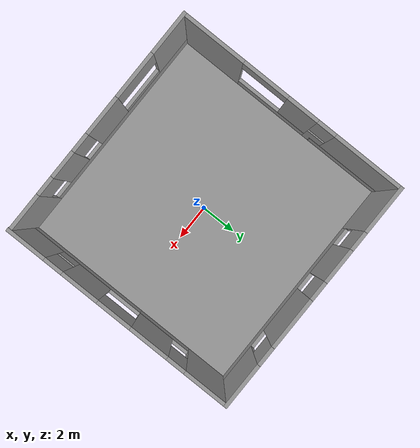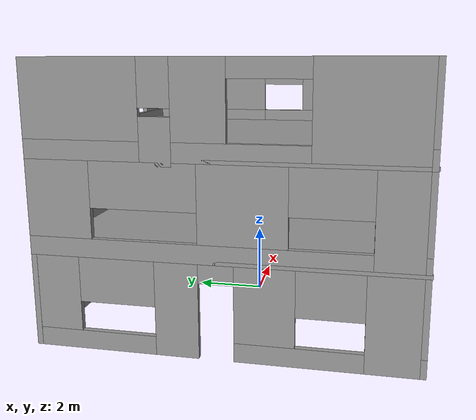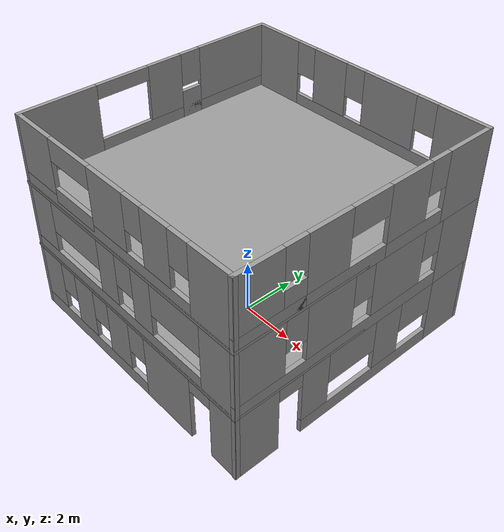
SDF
<?xml version='1.0'?>
<sdf version='1.6'>
  <model name='Tower_3Story'>
    <pose frame=''>0.029276 0.095901 0 0 -0 0</pose>
    <link name='Floor_0'>
      <collision name='Floor_0_Collision'>
        <geometry>
          <box>
            <size>10 10.0231 0.1</size>
          </box>
        </geometry>
        <pose frame=''>0 0 0.05 0 -0 0</pose>
      </collision>
      <visual name='Floor_0_Visual'>
        <pose frame=''>0 0 0.05 0 -0 0</pose>
        <geometry>
          <box>
            <size>10 10.0231 0.1</size>
          </box>
        </geometry>
        <material>
          <script>
            <uri>file://media/materials/scripts/gazebo.material</uri>
            <name>Gazebo/Grey</name>
          </script>
          <ambient>1 1 1 1</ambient>
        </material>
      </visual>
      <pose frame=''>0 0 2.5 0 -0 0</pose>
    </link>
    <link name='Floor_1'>
      <collision name='Floor_1_Collision'>
        <geometry>
          <box>
            <size>10 10.0231 0.1</size>
          </box>
        </geometry>
        <pose frame=''>0 0 0.05 0 -0 0</pose>
      </collision>
      <visual name='Floor_1_Visual'>
        <pose frame=''>0 0 0.05 0 -0 0</pose>
        <geometry>
          <box>
            <size>10 10.0231 0.1</size>
          </box>
        </geometry>
        <material>
          <script>
            <uri>file://media/materials/scripts/gazebo.material</uri>
            <name>Gazebo/Grey</name>
          </script>
          <ambient>1 1 1 1</ambient>
        </material>
      </visual>
      <pose frame=''>0 0 5 0 -0 0</pose>
    </link>
    <link name='Wall_19'>
      <pose frame=''>0 4.93656 0 0 -0 0</pose>
      <visual name='Wall_19_Visual_0'>
        <pose frame=''>-3.35446 0 1.25 0 -0 0</pose>
        <geometry>
          <box>
            <size>3.29207 0.15 2.5</size>
          </box>
        </geometry>
        <material>
          <script>
            <uri>file://media/materials/scripts/gazebo.material</uri>
            <name>Gazebo/Grey</name>
          </script>
          <ambient>1 1 1 1</ambient>
        </material>
      </visual>
      <collision name='Wall_19_Collision_0'>
        <geometry>
          <box>
            <size>3.29207 0.15 2.5</size>
          </box>
        </geometry>
        <pose frame=''>-3.35446 0 1.25 0 -0 0</pose>
      </collision>
      <visual name='Wall_19_Visual_1'>
        <pose frame=''>1.64603 0 0.25 0 -0 0</pose>
        <geometry>
          <box>
            <size>6.70891 0.15 0.5</size>
          </box>
        </geometry>
        <material>
          <script>
            <uri>file://media/materials/scripts/gazebo.material</uri>
            <name>Gazebo/Grey</name>
          </script>
          <ambient>1 1 1 1</ambient>
        </material>
      </visual>
      <collision name='Wall_19_Collision_1'>
        <geometry>
          <box>
            <size>6.70891 0.15 0.5</size>
          </box>
        </geometry>
        <pose frame=''>1.64603 0 0.25 0 -0 0</pose>
      </collision>
      <visual name='Wall_19_Visual_2'>
        <pose frame=''>3.27203 0 1.5 0 -0 0</pose>
        <geometry>
          <box>
            <size>3.45691 0.15 2</size>
          </box>
        </geometry>
        <material>
          <script>
            <uri>file://media/materials/scripts/gazebo.material</uri>
            <name>Gazebo/Grey</name>
          </script>
          <ambient>1 1 1 1</ambient>
        </material>
      </visual>
      <collision name='Wall_19_Collision_2'>
        <geometry>
          <box>
            <size>3.45691 0.15 2</size>
          </box>
        </geometry>
        <pose frame=''>3.27203 0 1.5 0 -0 0</pose>
      </collision>
      <visual name='Wall_19_Visual_3'>
        <pose frame=''>-0.082422 0 1.9 0 -0 0</pose>
        <geometry>
          <box>
            <size>3.252 0.15 1.2</size>
          </box>
        </geometry>
        <material>
          <script>
            <uri>file://media/materials/scripts/gazebo.material</uri>
            <name>Gazebo/Grey</name>
          </script>
          <ambient>1 1 1 1</ambient>
        </material>
      </visual>
      <collision name='Wall_19_Collision_3'>
        <geometry>
          <box>
            <size>3.252 0.15 1.2</size>
          </box>
        </geometry>
        <pose frame=''>-0.082422 0 1.9 0 -0 0</pose>
      </collision>
    </link>
    <link name='Wall_21'>
      <pose frame=''>4.925 -0.011565 0 0 0 -1.5708</pose>
      <visual name='Wall_21_Visual_0'>
        <pose frame=''>-4.12853 0 1.25 0 -0 0</pose>
        <geometry>
          <box>
            <size>1.74294 0.15 2.5</size>
          </box>
        </geometry>
        <material>
          <script>
            <uri>file://media/materials/scripts/gazebo.material</uri>
            <name>Gazebo/Grey</name>
          </script>
          <ambient>1 1 1 1</ambient>
        </material>
      </visual>
      <collision name='Wall_21_Collision_0'>
        <geometry>
          <box>
            <size>1.74294 0.15 2.5</size>
          </box>
        </geometry>
        <pose frame=''>-4.12853 0 1.25 0 -0 0</pose>
      </collision>
      <visual name='Wall_21_Visual_1'>
        <pose frame=''>4.1878 0 1.25 0 -0 0</pose>
        <geometry>
          <box>
            <size>1.62441 0.15 2.5</size>
          </box>
        </geometry>
        <material>
          <script>
            <uri>file://media/materials/scripts/gazebo.material</uri>
            <name>Gazebo/Grey</name>
          </script>
          <ambient>1 1 1 1</ambient>
        </material>
      </visual>
      <collision name='Wall_21_Collision_1'>
        <geometry>
          <box>
            <size>1.62441 0.15 2.5</size>
          </box>
        </geometry>
        <pose frame=''>4.1878 0 1.25 0 -0 0</pose>
      </collision>
      <visual name='Wall_21_Visual_2'>
        <pose frame=''>-0.390731 0 0.25 0 -0 0</pose>
        <geometry>
          <box>
            <size>5.73265 0.15 0.5</size>
          </box>
        </geometry>
        <material>
          <script>
            <uri>file://media/materials/scripts/gazebo.material</uri>
            <name>Gazebo/Grey</name>
          </script>
          <ambient>1 1 1 1</ambient>
        </material>
      </visual>
      <collision name='Wall_21_Collision_2'>
        <geometry>
          <box>
            <size>5.73265 0.15 0.5</size>
          </box>
        </geometry>
        <pose frame=''>-0.390731 0 0.25 0 -0 0</pose>
      </collision>
      <visual name='Wall_21_Visual_3'>
        <pose frame=''>-1.20252 0 1.5 0 -0 0</pose>
        <geometry>
          <box>
            <size>1.1675 0.15 2</size>
          </box>
        </geometry>
        <material>
          <script>
            <uri>file://media/materials/scripts/gazebo.material</uri>
            <name>Gazebo/Grey</name>
          </script>
          <ambient>1 1 1 1</ambient>
        </material>
      </visual>
      <collision name='Wall_21_Collision_3'>
        <geometry>
          <box>
            <size>1.1675 0.15 2</size>
          </box>
        </geometry>
        <pose frame=''>-1.20252 0 1.5 0 -0 0</pose>
      </collision>
      <visual name='Wall_21_Visual_4'>
        <pose frame=''>1.92841 0 1.5 0 -0 0</pose>
        <geometry>
          <box>
            <size>1.09437 0.15 2</size>
          </box>
        </geometry>
        <material>
          <script>
            <uri>file://media/materials/scripts/gazebo.material</uri>
            <name>Gazebo/Grey</name>
          </script>
          <ambient>1 1 1 1</ambient>
        </material>
      </visual>
      <collision name='Wall_21_Collision_4'>
        <geometry>
          <box>
            <size>1.09437 0.15 2</size>
          </box>
        </geometry>
        <pose frame=''>1.92841 0 1.5 0 -0 0</pose>
      </collision>
      <visual name='Wall_21_Visual_5'>
        <pose frame=''>-2.52166 0 1.9 0 -0 0</pose>
        <geometry>
          <box>
            <size>1.47079 0.15 1.2</size>
          </box>
        </geometry>
        <material>
          <script>
            <uri>file://media/materials/scripts/gazebo.material</uri>
            <name>Gazebo/Grey</name>
          </script>
          <ambient>1 1 1 1</ambient>
        </material>
      </visual>
      <collision name='Wall_21_Collision_5'>
        <geometry>
          <box>
            <size>1.47079 0.15 1.2</size>
          </box>
        </geometry>
        <pose frame=''>-2.52166 0 1.9 0 -0 0</pose>
      </collision>
      <visual name='Wall_21_Visual_6'>
        <pose frame=''>0.381228 0 1.9 0 -0 0</pose>
        <geometry>
          <box>
            <size>2 0.15 1.2</size>
          </box>
        </geometry>
        <material>
          <script>
            <uri>file://media/materials/scripts/gazebo.material</uri>
            <name>Gazebo/Grey</name>
          </script>
          <ambient>1 1 1 1</ambient>
        </material>
      </visual>
      <collision name='Wall_21_Collision_6'>
        <geometry>
          <box>
            <size>2 0.15 1.2</size>
          </box>
        </geometry>
        <pose frame=''>0.381228 0 1.9 0 -0 0</pose>
      </collision>
      <visual name='Wall_21_Visual_7'>
        <pose frame=''>2.92559 0 2.25 0 -0 0</pose>
        <geometry>
          <box>
            <size>0.9 0.15 0.5</size>
          </box>
        </geometry>
        <material>
          <script>
            <uri>file://media/materials/scripts/gazebo.material</uri>
            <name>Gazebo/Grey</name>
          </script>
          <ambient>1 1 1 1</ambient>
        </material>
      </visual>
      <collision name='Wall_21_Collision_7'>
        <geometry>
          <box>
            <size>0.9 0.15 0.5</size>
          </box>
        </geometry>
        <pose frame=''>2.92559 0 2.25 0 -0 0</pose>
      </collision>
    </link>
    <link name='Wall_22'>
      <pose frame=''>0 -4.91343 0 0 -0 3.14159</pose>
      <visual name='Wall_22_Visual_0'>
        <pose frame=''>-4.45121 0 1.25 0 -0 0</pose>
        <geometry>
          <box>
            <size>1.09857 0.15 2.5</size>
          </box>
        </geometry>
        <material>
          <script>
            <uri>file://media/materials/scripts/gazebo.material</uri>
            <name>Gazebo/Grey</name>
          </script>
          <ambient>1 1 1 1</ambient>
        </material>
      </visual>
      <collision name='Wall_22_Collision_0'>
        <geometry>
          <box>
            <size>1.09857 0.15 2.5</size>
          </box>
        </geometry>
        <pose frame=''>-4.45121 0 1.25 0 -0 0</pose>
      </collision>
      <visual name='Wall_22_Visual_1'>
        <pose frame=''>-1.92097 0 1.25 0 -0 0</pose>
        <geometry>
          <box>
            <size>2.16191 0.15 2.5</size>
          </box>
        </geometry>
        <material>
          <script>
            <uri>file://media/materials/scripts/gazebo.material</uri>
            <name>Gazebo/Grey</name>
          </script>
          <ambient>1 1 1 1</ambient>
        </material>
      </visual>
      <collision name='Wall_22_Collision_1'>
        <geometry>
          <box>
            <size>2.16191 0.15 2.5</size>
          </box>
        </geometry>
        <pose frame=''>-1.92097 0 1.25 0 -0 0</pose>
      </collision>
      <visual name='Wall_22_Visual_2'>
        <pose frame=''>2.08024 0 0.25 0 -0 0</pose>
        <geometry>
          <box>
            <size>5.84051 0.15 0.5</size>
          </box>
        </geometry>
        <material>
          <script>
            <uri>file://media/materials/scripts/gazebo.material</uri>
            <name>Gazebo/Grey</name>
          </script>
          <ambient>1 1 1 1</ambient>
        </material>
      </visual>
      <collision name='Wall_22_Collision_2'>
        <geometry>
          <box>
            <size>5.84051 0.15 0.5</size>
          </box>
        </geometry>
        <pose frame=''>2.08024 0 0.25 0 -0 0</pose>
      </collision>
      <visual name='Wall_22_Visual_3'>
        <pose frame=''>0.519904 0 1.5 0 -0 0</pose>
        <geometry>
          <box>
            <size>1.11984 0.15 2</size>
          </box>
        </geometry>
        <material>
          <script>
            <uri>file://media/materials/scripts/gazebo.material</uri>
            <name>Gazebo/Grey</name>
          </script>
          <ambient>1 1 1 1</ambient>
        </material>
      </visual>
      <collision name='Wall_22_Collision_3'>
        <geometry>
          <box>
            <size>1.11984 0.15 2</size>
          </box>
        </geometry>
        <pose frame=''>0.519904 0 1.5 0 -0 0</pose>
      </collision>
      <visual name='Wall_22_Visual_4'>
        <pose frame=''>2.40505 0 1.5 0 -0 0</pose>
        <geometry>
          <box>
            <size>1.05045 0.15 2</size>
          </box>
        </geometry>
        <material>
          <script>
            <uri>file://media/materials/scripts/gazebo.material</uri>
            <name>Gazebo/Grey</name>
          </script>
          <ambient>1 1 1 1</ambient>
        </material>
      </visual>
      <collision name='Wall_22_Collision_4'>
        <geometry>
          <box>
            <size>1.05045 0.15 2</size>
          </box>
        </geometry>
        <pose frame=''>2.40505 0 1.5 0 -0 0</pose>
      </collision>
      <visual name='Wall_22_Visual_5'>
        <pose frame=''>4.36538 0 1.5 0 -0 0</pose>
        <geometry>
          <box>
            <size>1.27022 0.15 2</size>
          </box>
        </geometry>
        <material>
          <script>
            <uri>file://media/materials/scripts/gazebo.material</uri>
            <name>Gazebo/Grey</name>
          </script>
          <ambient>1 1 1 1</ambient>
        </material>
      </visual>
      <collision name='Wall_22_Collision_5'>
        <geometry>
          <box>
            <size>1.27022 0.15 2</size>
          </box>
        </geometry>
        <pose frame=''>4.36538 0 1.5 0 -0 0</pose>
      </collision>
      <visual name='Wall_22_Visual_6'>
        <pose frame=''>-0.440016 0 1.9 0 -0 0</pose>
        <geometry>
          <box>
            <size>0.8 0.15 1.2</size>
          </box>
        </geometry>
        <material>
          <script>
            <uri>file://media/materials/scripts/gazebo.material</uri>
            <name>Gazebo/Grey</name>
          </script>
          <ambient>1 1 1 1</ambient>
        </material>
      </visual>
      <collision name='Wall_22_Collision_6'>
        <geometry>
          <box>
            <size>0.8 0.15 1.2</size>
          </box>
        </geometry>
        <pose frame=''>-0.440016 0 1.9 0 -0 0</pose>
      </collision>
      <visual name='Wall_22_Visual_7'>
        <pose frame=''>1.47982 0 1.9 0 -0 0</pose>
        <geometry>
          <box>
            <size>0.8 0.15 1.2</size>
          </box>
        </geometry>
        <material>
          <script>
            <uri>file://media/materials/scripts/gazebo.material</uri>
            <name>Gazebo/Grey</name>
          </script>
          <ambient>1 1 1 1</ambient>
        </material>
      </visual>
      <collision name='Wall_22_Collision_7'>
        <geometry>
          <box>
            <size>0.8 0.15 1.2</size>
          </box>
        </geometry>
        <pose frame=''>1.47982 0 1.9 0 -0 0</pose>
      </collision>
      <visual name='Wall_22_Visual_8'>
        <pose frame=''>3.33027 0 1.9 0 -0 0</pose>
        <geometry>
          <box>
            <size>0.8 0.15 1.2</size>
          </box>
        </geometry>
        <material>
          <script>
            <uri>file://media/materials/scripts/gazebo.material</uri>
            <name>Gazebo/Grey</name>
          </script>
          <ambient>1 1 1 1</ambient>
        </material>
      </visual>
      <collision name='Wall_22_Collision_8'>
        <geometry>
          <box>
            <size>0.8 0.15 1.2</size>
          </box>
        </geometry>
        <pose frame=''>3.33027 0 1.9 0 -0 0</pose>
      </collision>
      <visual name='Wall_22_Visual_9'>
        <pose frame=''>-3.45192 0 2.25 0 -0 0</pose>
        <geometry>
          <box>
            <size>0.9 0.15 0.5</size>
          </box>
        </geometry>
        <material>
          <script>
            <uri>file://media/materials/scripts/gazebo.material</uri>
            <name>Gazebo/Grey</name>
          </script>
          <ambient>1 1 1 1</ambient>
        </material>
      </visual>
      <collision name='Wall_22_Collision_9'>
        <geometry>
          <box>
            <size>0.9 0.15 0.5</size>
          </box>
        </geometry>
        <pose frame=''>-3.45192 0 2.25 0 -0 0</pose>
      </collision>
    </link>
    <link name='Wall_23'>
      <pose frame=''>-4.925 0.011565 0 0 -0 1.5708</pose>
      <visual name='Wall_23_Visual_0'>
        <pose frame=''>-4.27105 0 1.25 0 -0 0</pose>
        <geometry>
          <box>
            <size>1.4579 0.15 2.5</size>
          </box>
        </geometry>
        <material>
          <script>
            <uri>file://media/materials/scripts/gazebo.material</uri>
            <name>Gazebo/Grey</name>
          </script>
          <ambient>1 1 1 1</ambient>
        </material>
      </visual>
      <collision name='Wall_23_Collision_0'>
        <geometry>
          <box>
            <size>1.4579 0.15 2.5</size>
          </box>
        </geometry>
        <pose frame=''>-4.27105 0 1.25 0 -0 0</pose>
      </collision>
      <visual name='Wall_23_Visual_1'>
        <pose frame=''>1.11996 0 1.25 0 -0 0</pose>
        <geometry>
          <box>
            <size>1.1309 0.15 2.5</size>
          </box>
        </geometry>
        <material>
          <script>
            <uri>file://media/materials/scripts/gazebo.material</uri>
            <name>Gazebo/Grey</name>
          </script>
          <ambient>1 1 1 1</ambient>
        </material>
      </visual>
      <collision name='Wall_23_Collision_1'>
        <geometry>
          <box>
            <size>1.1309 0.15 2.5</size>
          </box>
        </geometry>
        <pose frame=''>1.11996 0 1.25 0 -0 0</pose>
      </collision>
      <visual name='Wall_23_Visual_2'>
        <pose frame=''>-1.94379 0 0.25 0 -0 0</pose>
        <geometry>
          <box>
            <size>3.19662 0.15 0.5</size>
          </box>
        </geometry>
        <material>
          <script>
            <uri>file://media/materials/scripts/gazebo.material</uri>
            <name>Gazebo/Grey</name>
          </script>
          <ambient>1 1 1 1</ambient>
        </material>
      </visual>
      <collision name='Wall_23_Collision_2'>
        <geometry>
          <box>
            <size>3.19662 0.15 0.5</size>
          </box>
        </geometry>
        <pose frame=''>-1.94379 0 0.25 0 -0 0</pose>
      </collision>
      <visual name='Wall_23_Visual_3'>
        <pose frame=''>3.34271 0 0.25 0 -0 0</pose>
        <geometry>
          <box>
            <size>3.31459 0.15 0.5</size>
          </box>
        </geometry>
        <material>
          <script>
            <uri>file://media/materials/scripts/gazebo.material</uri>
            <name>Gazebo/Grey</name>
          </script>
          <ambient>1 1 1 1</ambient>
        </material>
      </visual>
      <collision name='Wall_23_Collision_3'>
        <geometry>
          <box>
            <size>3.31459 0.15 0.5</size>
          </box>
        </geometry>
        <pose frame=''>3.34271 0 0.25 0 -0 0</pose>
      </collision>
      <visual name='Wall_23_Visual_4'>
        <pose frame=''>-1.10431 0 1.5 0 -0 0</pose>
        <geometry>
          <box>
            <size>1.51766 0.15 2</size>
          </box>
        </geometry>
        <material>
          <script>
            <uri>file://media/materials/scripts/gazebo.material</uri>
            <name>Gazebo/Grey</name>
          </script>
          <ambient>1 1 1 1</ambient>
        </material>
      </visual>
      <collision name='Wall_23_Collision_4'>
        <geometry>
          <box>
            <size>1.51766 0.15 2</size>
          </box>
        </geometry>
        <pose frame=''>-1.10431 0 1.5 0 -0 0</pose>
      </collision>
      <visual name='Wall_23_Visual_5'>
        <pose frame=''>-1.10431 0 1.5 0 -0 0</pose>
        <geometry>
          <box>
            <size>1.51766 0.15 2</size>
          </box>
        </geometry>
        <material>
          <script>
            <uri>file://media/materials/scripts/gazebo.material</uri>
            <name>Gazebo/Grey</name>
          </script>
          <ambient>1 1 1 1</ambient>
        </material>
      </visual>
      <collision name='Wall_23_Collision_5'>
        <geometry>
          <box>
            <size>1.51766 0.15 2</size>
          </box>
        </geometry>
        <pose frame=''>-1.10431 0 1.5 0 -0 0</pose>
      </collision>
      <visual name='Wall_23_Visual_6'>
        <pose frame=''>4.3441 0 1.5 0 -0 0</pose>
        <geometry>
          <box>
            <size>1.3118 0.15 2</size>
          </box>
        </geometry>
        <material>
          <script>
            <uri>file://media/materials/scripts/gazebo.material</uri>
            <name>Gazebo/Grey</name>
          </script>
          <ambient>1 1 1 1</ambient>
        </material>
      </visual>
      <collision name='Wall_23_Collision_6'>
        <geometry>
          <box>
            <size>1.3118 0.15 2</size>
          </box>
        </geometry>
        <pose frame=''>4.3441 0 1.5 0 -0 0</pose>
      </collision>
      <visual name='Wall_23_Visual_7'>
        <pose frame=''>-2.70262 0 1.9 0 -0 0</pose>
        <geometry>
          <box>
            <size>1.67896 0.15 1.2</size>
          </box>
        </geometry>
        <material>
          <script>
            <uri>file://media/materials/scripts/gazebo.material</uri>
            <name>Gazebo/Grey</name>
          </script>
          <ambient>1 1 1 1</ambient>
        </material>
      </visual>
      <collision name='Wall_23_Collision_7'>
        <geometry>
          <box>
            <size>1.67896 0.15 1.2</size>
          </box>
        </geometry>
        <pose frame=''>-2.70262 0 1.9 0 -0 0</pose>
      </collision>
      <visual name='Wall_23_Visual_8'>
        <pose frame=''>2.68681 0 1.9 0 -0 0</pose>
        <geometry>
          <box>
            <size>2.00279 0.15 1.2</size>
          </box>
        </geometry>
        <material>
          <script>
            <uri>file://media/materials/scripts/gazebo.material</uri>
            <name>Gazebo/Grey</name>
          </script>
          <ambient>1 1 1 1</ambient>
        </material>
      </visual>
      <collision name='Wall_23_Collision_8'>
        <geometry>
          <box>
            <size>2.00279 0.15 1.2</size>
          </box>
        </geometry>
        <pose frame=''>2.68681 0 1.9 0 -0 0</pose>
      </collision>
      <visual name='Wall_23_Visual_9'>
        <pose frame=''>0.104515 0 2.25 0 -0 0</pose>
        <geometry>
          <box>
            <size>0.9 0.15 0.5</size>
          </box>
        </geometry>
        <material>
          <script>
            <uri>file://media/materials/scripts/gazebo.material</uri>
            <name>Gazebo/Grey</name>
          </script>
          <ambient>1 1 1 1</ambient>
        </material>
      </visual>
      <collision name='Wall_23_Collision_9'>
        <geometry>
          <box>
            <size>0.9 0.15 0.5</size>
          </box>
        </geometry>
        <pose frame=''>0.104515 0 2.25 0 -0 0</pose>
      </collision>
      <visual name='Wall_23_Visual_10'>
        <pose frame=''>0.104515 0 2.25 0 -0 0</pose>
        <geometry>
          <box>
            <size>0.9 0.15 0.5</size>
          </box>
        </geometry>
        <material>
          <script>
            <uri>file://media/materials/scripts/gazebo.material</uri>
            <name>Gazebo/Grey</name>
          </script>
          <ambient>1 1 1 1</ambient>
        </material>
      </visual>
      <collision name='Wall_23_Collision_10'>
        <geometry>
          <box>
            <size>0.9 0.15 0.5</size>
          </box>
        </geometry>
        <pose frame=''>0.104515 0 2.25 0 -0 0</pose>
      </collision>
    </link>
    <link name='Wall_25'>
      <pose frame=''>0 4.93656 2.5 0 -0 0</pose>
      <visual name='Wall_25_Visual_0'>
        <pose frame=''>-3.45824 0 1.25 0 -0 0</pose>
        <geometry>
          <box>
            <size>3.08351 0.15 2.5</size>
          </box>
        </geometry>
        <material>
          <script>
            <uri>file://media/materials/scripts/gazebo.material</uri>
            <name>Gazebo/Grey</name>
          </script>
          <ambient>1 1 1 1</ambient>
        </material>
      </visual>
      <collision name='Wall_25_Collision_0'>
        <geometry>
          <box>
            <size>3.08351 0.15 2.5</size>
          </box>
        </geometry>
        <pose frame=''>-3.45824 0 1.25 0 -0 0</pose>
      </collision>
      <visual name='Wall_25_Visual_1'>
        <pose frame=''>1.54176 0 0.25 0 -0 0</pose>
        <geometry>
          <box>
            <size>6.91648 0.15 0.5</size>
          </box>
        </geometry>
        <material>
          <script>
            <uri>file://media/materials/scripts/gazebo.material</uri>
            <name>Gazebo/Grey</name>
          </script>
          <ambient>1 1 1 1</ambient>
        </material>
      </visual>
      <collision name='Wall_25_Collision_1'>
        <geometry>
          <box>
            <size>6.91648 0.15 0.5</size>
          </box>
        </geometry>
        <pose frame=''>1.54176 0 0.25 0 -0 0</pose>
      </collision>
      <visual name='Wall_25_Visual_2'>
        <pose frame=''>3.63026 0 1.5 0 -0 0</pose>
        <geometry>
          <box>
            <size>2.73949 0.15 2</size>
          </box>
        </geometry>
        <material>
          <script>
            <uri>file://media/materials/scripts/gazebo.material</uri>
            <name>Gazebo/Grey</name>
          </script>
          <ambient>1 1 1 1</ambient>
        </material>
      </visual>
      <collision name='Wall_25_Collision_2'>
        <geometry>
          <box>
            <size>2.73949 0.15 2</size>
          </box>
        </geometry>
        <pose frame=''>3.63026 0 1.5 0 -0 0</pose>
      </collision>
      <visual name='Wall_25_Visual_3'>
        <pose frame=''>0.172015 0 2.25 0 -0 0</pose>
        <geometry>
          <box>
            <size>4.177 0.15 0.5</size>
          </box>
        </geometry>
        <material>
          <script>
            <uri>file://media/materials/scripts/gazebo.material</uri>
            <name>Gazebo/Grey</name>
          </script>
          <ambient>1 1 1 1</ambient>
        </material>
      </visual>
      <collision name='Wall_25_Collision_3'>
        <geometry>
          <box>
            <size>4.177 0.15 0.5</size>
          </box>
        </geometry>
        <pose frame=''>0.172015 0 2.25 0 -0 0</pose>
      </collision>
    </link>
    <link name='Wall_26'>
      <pose frame=''>4.925 -0.011565 2.5 0 0 -1.5708</pose>
      <visual name='Wall_26_Visual_0'>
        <pose frame=''>-4.12436 0 1.25 0 -0 0</pose>
        <geometry>
          <box>
            <size>1.75128 0.15 2.5</size>
          </box>
        </geometry>
        <material>
          <script>
            <uri>file://media/materials/scripts/gazebo.material</uri>
            <name>Gazebo/Grey</name>
          </script>
          <ambient>1 1 1 1</ambient>
        </material>
      </visual>
      <collision name='Wall_26_Collision_0'>
        <geometry>
          <box>
            <size>1.75128 0.15 2.5</size>
          </box>
        </geometry>
        <pose frame=''>-4.12436 0 1.25 0 -0 0</pose>
      </collision>
      <visual name='Wall_26_Visual_1'>
        <pose frame=''>0.875638 0 0.25 0 -0 0</pose>
        <geometry>
          <box>
            <size>8.24872 0.15 0.5</size>
          </box>
        </geometry>
        <material>
          <script>
            <uri>file://media/materials/scripts/gazebo.material</uri>
            <name>Gazebo/Grey</name>
          </script>
          <ambient>1 1 1 1</ambient>
        </material>
      </visual>
      <collision name='Wall_26_Collision_1'>
        <geometry>
          <box>
            <size>8.24872 0.15 0.5</size>
          </box>
        </geometry>
        <pose frame=''>0.875638 0 0.25 0 -0 0</pose>
      </collision>
      <visual name='Wall_26_Visual_2'>
        <pose frame=''>-1.34523 0 1.5 0 -0 0</pose>
        <geometry>
          <box>
            <size>2.20698 0.15 2</size>
          </box>
        </geometry>
        <material>
          <script>
            <uri>file://media/materials/scripts/gazebo.material</uri>
            <name>Gazebo/Grey</name>
          </script>
          <ambient>1 1 1 1</ambient>
        </material>
      </visual>
      <collision name='Wall_26_Collision_2'>
        <geometry>
          <box>
            <size>2.20698 0.15 2</size>
          </box>
        </geometry>
        <pose frame=''>-1.34523 0 1.5 0 -0 0</pose>
      </collision>
      <visual name='Wall_26_Visual_3'>
        <pose frame=''>1.4767 0 1.5 0 -0 0</pose>
        <geometry>
          <box>
            <size>1.83689 0.15 2</size>
          </box>
        </geometry>
        <material>
          <script>
            <uri>file://media/materials/scripts/gazebo.material</uri>
            <name>Gazebo/Grey</name>
          </script>
          <ambient>1 1 1 1</ambient>
        </material>
      </visual>
      <collision name='Wall_26_Collision_3'>
        <geometry>
          <box>
            <size>1.83689 0.15 2</size>
          </box>
        </geometry>
        <pose frame=''>1.4767 0 1.5 0 -0 0</pose>
      </collision>
      <visual name='Wall_26_Visual_4'>
        <pose frame=''>4.09757 0 1.5 0 -0 0</pose>
        <geometry>
          <box>
            <size>1.80486 0.15 2</size>
          </box>
        </geometry>
        <material>
          <script>
            <uri>file://media/materials/scripts/gazebo.material</uri>
            <name>Gazebo/Grey</name>
          </script>
          <ambient>1 1 1 1</ambient>
        </material>
      </visual>
      <collision name='Wall_26_Collision_4'>
        <geometry>
          <box>
            <size>1.80486 0.15 2</size>
          </box>
        </geometry>
        <pose frame=''>4.09757 0 1.5 0 -0 0</pose>
      </collision>
      <visual name='Wall_26_Visual_5'>
        <pose frame=''>-2.84872 0 1.9 0 -0 0</pose>
        <geometry>
          <box>
            <size>0.8 0.15 1.2</size>
          </box>
        </geometry>
        <material>
          <script>
            <uri>file://media/materials/scripts/gazebo.material</uri>
            <name>Gazebo/Grey</name>
          </script>
          <ambient>1 1 1 1</ambient>
        </material>
      </visual>
      <collision name='Wall_26_Collision_5'>
        <geometry>
          <box>
            <size>0.8 0.15 1.2</size>
          </box>
        </geometry>
        <pose frame=''>-2.84872 0 1.9 0 -0 0</pose>
      </collision>
      <visual name='Wall_26_Visual_6'>
        <pose frame=''>0.158256 0 1.9 0 -0 0</pose>
        <geometry>
          <box>
            <size>0.8 0.15 1.2</size>
          </box>
        </geometry>
        <material>
          <script>
            <uri>file://media/materials/scripts/gazebo.material</uri>
            <name>Gazebo/Grey</name>
          </script>
          <ambient>1 1 1 1</ambient>
        </material>
      </visual>
      <collision name='Wall_26_Collision_6'>
        <geometry>
          <box>
            <size>0.8 0.15 1.2</size>
          </box>
        </geometry>
        <pose frame=''>0.158256 0 1.9 0 -0 0</pose>
      </collision>
      <visual name='Wall_26_Visual_7'>
        <pose frame=''>2.79515 0 1.9 0 -0 0</pose>
        <geometry>
          <box>
            <size>0.8 0.15 1.2</size>
          </box>
        </geometry>
        <material>
          <script>
            <uri>file://media/materials/scripts/gazebo.material</uri>
            <name>Gazebo/Grey</name>
          </script>
          <ambient>1 1 1 1</ambient>
        </material>
      </visual>
      <collision name='Wall_26_Collision_7'>
        <geometry>
          <box>
            <size>0.8 0.15 1.2</size>
          </box>
        </geometry>
        <pose frame=''>2.79515 0 1.9 0 -0 0</pose>
      </collision>
    </link>
    <link name='Wall_27'>
      <pose frame=''>0 -4.91343 2.5 0 -0 3.14159</pose>
      <visual name='Wall_27_Visual_0'>
        <pose frame=''>-4.2895 0 1.25 0 -0 0</pose>
        <geometry>
          <box>
            <size>1.42101 0.15 2.5</size>
          </box>
        </geometry>
        <material>
          <script>
            <uri>file://media/materials/scripts/gazebo.material</uri>
            <name>Gazebo/Grey</name>
          </script>
          <ambient>1 1 1 1</ambient>
        </material>
      </visual>
      <collision name='Wall_27_Collision_0'>
        <geometry>
          <box>
            <size>1.42101 0.15 2.5</size>
          </box>
        </geometry>
        <pose frame=''>-4.2895 0 1.25 0 -0 0</pose>
      </collision>
      <visual name='Wall_27_Visual_1'>
        <pose frame=''>0.710503 0 0.25 0 -0 0</pose>
        <geometry>
          <box>
            <size>8.57899 0.15 0.5</size>
          </box>
        </geometry>
        <material>
          <script>
            <uri>file://media/materials/scripts/gazebo.material</uri>
            <name>Gazebo/Grey</name>
          </script>
          <ambient>1 1 1 1</ambient>
        </material>
      </visual>
      <collision name='Wall_27_Collision_1'>
        <geometry>
          <box>
            <size>8.57899 0.15 0.5</size>
          </box>
        </geometry>
        <pose frame=''>0.710503 0 0.25 0 -0 0</pose>
      </collision>
      <visual name='Wall_27_Visual_2'>
        <pose frame=''>-0.993152 0 1.5 0 -0 0</pose>
        <geometry>
          <box>
            <size>0.888534 0.15 2</size>
          </box>
        </geometry>
        <material>
          <script>
            <uri>file://media/materials/scripts/gazebo.material</uri>
            <name>Gazebo/Grey</name>
          </script>
          <ambient>1 1 1 1</ambient>
        </material>
      </visual>
      <collision name='Wall_27_Collision_2'>
        <geometry>
          <box>
            <size>0.888534 0.15 2</size>
          </box>
        </geometry>
        <pose frame=''>-0.993152 0 1.5 0 -0 0</pose>
      </collision>
      <visual name='Wall_27_Visual_3'>
        <pose frame=''>0.706948 0 1.5 0 -0 0</pose>
        <geometry>
          <box>
            <size>0.911665 0.15 2</size>
          </box>
        </geometry>
        <material>
          <script>
            <uri>file://media/materials/scripts/gazebo.material</uri>
            <name>Gazebo/Grey</name>
          </script>
          <ambient>1 1 1 1</ambient>
        </material>
      </visual>
      <collision name='Wall_27_Collision_3'>
        <geometry>
          <box>
            <size>0.911665 0.15 2</size>
          </box>
        </geometry>
        <pose frame=''>0.706948 0 1.5 0 -0 0</pose>
      </collision>
      <visual name='Wall_27_Visual_4'>
        <pose frame=''>4.33722 0 1.5 0 -0 0</pose>
        <geometry>
          <box>
            <size>1.32555 0.15 2</size>
          </box>
        </geometry>
        <material>
          <script>
            <uri>file://media/materials/scripts/gazebo.material</uri>
            <name>Gazebo/Grey</name>
          </script>
          <ambient>1 1 1 1</ambient>
        </material>
      </visual>
      <collision name='Wall_27_Collision_4'>
        <geometry>
          <box>
            <size>1.32555 0.15 2</size>
          </box>
        </geometry>
        <pose frame=''>4.33722 0 1.5 0 -0 0</pose>
      </collision>
      <visual name='Wall_27_Visual_5'>
        <pose frame=''>-2.50821 0 1.9 0 -0 0</pose>
        <geometry>
          <box>
            <size>2.14158 0.15 1.2</size>
          </box>
        </geometry>
        <material>
          <script>
            <uri>file://media/materials/scripts/gazebo.material</uri>
            <name>Gazebo/Grey</name>
          </script>
          <ambient>1 1 1 1</ambient>
        </material>
      </visual>
      <collision name='Wall_27_Collision_5'>
        <geometry>
          <box>
            <size>2.14158 0.15 1.2</size>
          </box>
        </geometry>
        <pose frame=''>-2.50821 0 1.9 0 -0 0</pose>
      </collision>
      <visual name='Wall_27_Visual_6'>
        <pose frame=''>-0.148884 0 1.9 0 -0 0</pose>
        <geometry>
          <box>
            <size>0.8 0.15 1.2</size>
          </box>
        </geometry>
        <material>
          <script>
            <uri>file://media/materials/scripts/gazebo.material</uri>
            <name>Gazebo/Grey</name>
          </script>
          <ambient>1 1 1 1</ambient>
        </material>
      </visual>
      <collision name='Wall_27_Collision_6'>
        <geometry>
          <box>
            <size>0.8 0.15 1.2</size>
          </box>
        </geometry>
        <pose frame=''>-0.148884 0 1.9 0 -0 0</pose>
      </collision>
      <visual name='Wall_27_Visual_7'>
        <pose frame=''>2.41861 0 1.9 0 -0 0</pose>
        <geometry>
          <box>
            <size>2.51166 0.15 1.2</size>
          </box>
        </geometry>
        <material>
          <script>
            <uri>file://media/materials/scripts/gazebo.material</uri>
            <name>Gazebo/Grey</name>
          </script>
          <ambient>1 1 1 1</ambient>
        </material>
      </visual>
      <collision name='Wall_27_Collision_7'>
        <geometry>
          <box>
            <size>2.51166 0.15 1.2</size>
          </box>
        </geometry>
        <pose frame=''>2.41861 0 1.9 0 -0 0</pose>
      </collision>
    </link>
    <link name='Wall_28'>
      <pose frame=''>-4.925 0.011565 2.5 0 -0 1.5708</pose>
      <visual name='Wall_28_Visual_0'>
        <pose frame=''>-4.34044 0 1.25 0 -0 0</pose>
        <geometry>
          <box>
            <size>1.31911 0.15 2.5</size>
          </box>
        </geometry>
        <material>
          <script>
            <uri>file://media/materials/scripts/gazebo.material</uri>
            <name>Gazebo/Grey</name>
          </script>
          <ambient>1 1 1 1</ambient>
        </material>
      </visual>
      <collision name='Wall_28_Collision_0'>
        <geometry>
          <box>
            <size>1.31911 0.15 2.5</size>
          </box>
        </geometry>
        <pose frame=''>-4.34044 0 1.25 0 -0 0</pose>
      </collision>
      <visual name='Wall_28_Visual_1'>
        <pose frame=''>0.659556 0 0.25 0 -0 0</pose>
        <geometry>
          <box>
            <size>8.68089 0.15 0.5</size>
          </box>
        </geometry>
        <material>
          <script>
            <uri>file://media/materials/scripts/gazebo.material</uri>
            <name>Gazebo/Grey</name>
          </script>
          <ambient>1 1 1 1</ambient>
        </material>
      </visual>
      <collision name='Wall_28_Collision_1'>
        <geometry>
          <box>
            <size>8.68089 0.15 0.5</size>
          </box>
        </geometry>
        <pose frame=''>0.659556 0 0.25 0 -0 0</pose>
      </collision>
      <visual name='Wall_28_Visual_2'>
        <pose frame=''>-0.563041 0 1.5 0 -0 0</pose>
        <geometry>
          <box>
            <size>2.23011 0.15 2</size>
          </box>
        </geometry>
        <material>
          <script>
            <uri>file://media/materials/scripts/gazebo.material</uri>
            <name>Gazebo/Grey</name>
          </script>
          <ambient>1 1 1 1</ambient>
        </material>
      </visual>
      <collision name='Wall_28_Collision_2'>
        <geometry>
          <box>
            <size>2.23011 0.15 2</size>
          </box>
        </geometry>
        <pose frame=''>-0.563041 0 1.5 0 -0 0</pose>
      </collision>
      <visual name='Wall_28_Visual_3'>
        <pose frame=''>4.14749 0 1.5 0 -0 0</pose>
        <geometry>
          <box>
            <size>1.70501 0.15 2</size>
          </box>
        </geometry>
        <material>
          <script>
            <uri>file://media/materials/scripts/gazebo.material</uri>
            <name>Gazebo/Grey</name>
          </script>
          <ambient>1 1 1 1</ambient>
        </material>
      </visual>
      <collision name='Wall_28_Collision_3'>
        <geometry>
          <box>
            <size>1.70501 0.15 2</size>
          </box>
        </geometry>
        <pose frame=''>4.14749 0 1.5 0 -0 0</pose>
      </collision>
      <visual name='Wall_28_Visual_4'>
        <pose frame=''>-2.67949 0 1.9 0 -0 0</pose>
        <geometry>
          <box>
            <size>2.00279 0.15 1.2</size>
          </box>
        </geometry>
        <material>
          <script>
            <uri>file://media/materials/scripts/gazebo.material</uri>
            <name>Gazebo/Grey</name>
          </script>
          <ambient>1 1 1 1</ambient>
        </material>
      </visual>
      <collision name='Wall_28_Collision_4'>
        <geometry>
          <box>
            <size>2.00279 0.15 1.2</size>
          </box>
        </geometry>
        <pose frame=''>-2.67949 0 1.9 0 -0 0</pose>
      </collision>
      <visual name='Wall_28_Visual_5'>
        <pose frame=''>1.9235 0 1.9 0 -0 0</pose>
        <geometry>
          <box>
            <size>2.74297 0.15 1.2</size>
          </box>
        </geometry>
        <material>
          <script>
            <uri>file://media/materials/scripts/gazebo.material</uri>
            <name>Gazebo/Grey</name>
          </script>
          <ambient>1 1 1 1</ambient>
        </material>
      </visual>
      <collision name='Wall_28_Collision_5'>
        <geometry>
          <box>
            <size>2.74297 0.15 1.2</size>
          </box>
        </geometry>
        <pose frame=''>1.9235 0 1.9 0 -0 0</pose>
      </collision>
    </link>
    <link name='Wall_29'>
      <pose frame=''>0 4.93656 5 0 -0 0</pose>
      <visual name='Wall_29_Visual_0'>
        <pose frame=''>-3.96713 0 1.25 0 -0 0</pose>
        <geometry>
          <box>
            <size>2.06573 0.15 2.5</size>
          </box>
        </geometry>
        <material>
          <script>
            <uri>file://media/materials/scripts/gazebo.material</uri>
            <name>Gazebo/Grey</name>
          </script>
          <ambient>1 1 1 1</ambient>
        </material>
      </visual>
      <collision name='Wall_29_Collision_0'>
        <geometry>
          <box>
            <size>2.06573 0.15 2.5</size>
          </box>
        </geometry>
        <pose frame=''>-3.96713 0 1.25 0 -0 0</pose>
      </collision>
      <visual name='Wall_29_Visual_1'>
        <pose frame=''>1.03287 0 0.25 0 -0 0</pose>
        <geometry>
          <box>
            <size>7.93427 0.15 0.5</size>
          </box>
        </geometry>
        <material>
          <script>
            <uri>file://media/materials/scripts/gazebo.material</uri>
            <name>Gazebo/Grey</name>
          </script>
          <ambient>1 1 1 1</ambient>
        </material>
      </visual>
      <collision name='Wall_29_Collision_1'>
        <geometry>
          <box>
            <size>7.93427 0.15 0.5</size>
          </box>
        </geometry>
        <pose frame=''>1.03287 0 0.25 0 -0 0</pose>
      </collision>
      <visual name='Wall_29_Visual_2'>
        <pose frame=''>-1.40087 0 1.5 0 -0 0</pose>
        <geometry>
          <box>
            <size>1.4668 0.15 2</size>
          </box>
        </geometry>
        <material>
          <script>
            <uri>file://media/materials/scripts/gazebo.material</uri>
            <name>Gazebo/Grey</name>
          </script>
          <ambient>1 1 1 1</ambient>
        </material>
      </visual>
      <collision name='Wall_29_Collision_2'>
        <geometry>
          <box>
            <size>1.4668 0.15 2</size>
          </box>
        </geometry>
        <pose frame=''>-1.40087 0 1.5 0 -0 0</pose>
      </collision>
      <visual name='Wall_29_Visual_3'>
        <pose frame=''>1.21289 0 1.5 0 -0 0</pose>
        <geometry>
          <box>
            <size>2.16072 0.15 2</size>
          </box>
        </geometry>
        <material>
          <script>
            <uri>file://media/materials/scripts/gazebo.material</uri>
            <name>Gazebo/Grey</name>
          </script>
          <ambient>1 1 1 1</ambient>
        </material>
      </visual>
      <collision name='Wall_29_Collision_3'>
        <geometry>
          <box>
            <size>2.16072 0.15 2</size>
          </box>
        </geometry>
        <pose frame=''>1.21289 0 1.5 0 -0 0</pose>
      </collision>
      <visual name='Wall_29_Visual_4'>
        <pose frame=''>4.04663 0 1.5 0 -0 0</pose>
        <geometry>
          <box>
            <size>1.90675 0.15 2</size>
          </box>
        </geometry>
        <material>
          <script>
            <uri>file://media/materials/scripts/gazebo.material</uri>
            <name>Gazebo/Grey</name>
          </script>
          <ambient>1 1 1 1</ambient>
        </material>
      </visual>
      <collision name='Wall_29_Collision_4'>
        <geometry>
          <box>
            <size>1.90675 0.15 2</size>
          </box>
        </geometry>
        <pose frame=''>4.04663 0 1.5 0 -0 0</pose>
      </collision>
      <visual name='Wall_29_Visual_5'>
        <pose frame=''>-2.53427 0 1.9 0 -0 0</pose>
        <geometry>
          <box>
            <size>0.8 0.15 1.2</size>
          </box>
        </geometry>
        <material>
          <script>
            <uri>file://media/materials/scripts/gazebo.material</uri>
            <name>Gazebo/Grey</name>
          </script>
          <ambient>1 1 1 1</ambient>
        </material>
      </visual>
      <collision name='Wall_29_Collision_5'>
        <geometry>
          <box>
            <size>0.8 0.15 1.2</size>
          </box>
        </geometry>
        <pose frame=''>-2.53427 0 1.9 0 -0 0</pose>
      </collision>
      <visual name='Wall_29_Visual_6'>
        <pose frame=''>-0.267467 0 1.9 0 -0 0</pose>
        <geometry>
          <box>
            <size>0.8 0.15 1.2</size>
          </box>
        </geometry>
        <material>
          <script>
            <uri>file://media/materials/scripts/gazebo.material</uri>
            <name>Gazebo/Grey</name>
          </script>
          <ambient>1 1 1 1</ambient>
        </material>
      </visual>
      <collision name='Wall_29_Collision_6'>
        <geometry>
          <box>
            <size>0.8 0.15 1.2</size>
          </box>
        </geometry>
        <pose frame=''>-0.267467 0 1.9 0 -0 0</pose>
      </collision>
      <visual name='Wall_29_Visual_7'>
        <pose frame=''>2.69325 0 1.9 0 -0 0</pose>
        <geometry>
          <box>
            <size>0.8 0.15 1.2</size>
          </box>
        </geometry>
        <material>
          <script>
            <uri>file://media/materials/scripts/gazebo.material</uri>
            <name>Gazebo/Grey</name>
          </script>
          <ambient>1 1 1 1</ambient>
        </material>
      </visual>
      <collision name='Wall_29_Collision_7'>
        <geometry>
          <box>
            <size>0.8 0.15 1.2</size>
          </box>
        </geometry>
        <pose frame=''>2.69325 0 1.9 0 -0 0</pose>
      </collision>
    </link>
    <link name='Wall_30'>
      <pose frame=''>4.925 -0.011565 5 0 0 -1.5708</pose>
      <visual name='Wall_30_Visual_0'>
        <pose frame=''>-4.03184 0 1.25 0 -0 0</pose>
        <geometry>
          <box>
            <size>1.93632 0.15 2.5</size>
          </box>
        </geometry>
        <material>
          <script>
            <uri>file://media/materials/scripts/gazebo.material</uri>
            <name>Gazebo/Grey</name>
          </script>
          <ambient>1 1 1 1</ambient>
        </material>
      </visual>
      <collision name='Wall_30_Collision_0'>
        <geometry>
          <box>
            <size>1.93632 0.15 2.5</size>
          </box>
        </geometry>
        <pose frame=''>-4.03184 0 1.25 0 -0 0</pose>
      </collision>
      <visual name='Wall_30_Visual_1'>
        <pose frame=''>-1.82771 0 0.25 0 -0 0</pose>
        <geometry>
          <box>
            <size>2.47193 0.15 0.5</size>
          </box>
        </geometry>
        <material>
          <script>
            <uri>file://media/materials/scripts/gazebo.material</uri>
            <name>Gazebo/Grey</name>
          </script>
          <ambient>1 1 1 1</ambient>
        </material>
      </visual>
      <collision name='Wall_30_Collision_1'>
        <geometry>
          <box>
            <size>2.47193 0.15 0.5</size>
          </box>
        </geometry>
        <pose frame=''>-1.82771 0 0.25 0 -0 0</pose>
      </collision>
      <visual name='Wall_30_Visual_2'>
        <pose frame=''>2.20413 0 0.25 0 -0 0</pose>
        <geometry>
          <box>
            <size>5.59174 0.15 0.5</size>
          </box>
        </geometry>
        <material>
          <script>
            <uri>file://media/materials/scripts/gazebo.material</uri>
            <name>Gazebo/Grey</name>
          </script>
          <ambient>1 1 1 1</ambient>
        </material>
      </visual>
      <collision name='Wall_30_Collision_2'>
        <geometry>
          <box>
            <size>5.59174 0.15 0.5</size>
          </box>
        </geometry>
        <pose frame=''>2.20413 0 0.25 0 -0 0</pose>
      </collision>
      <visual name='Wall_30_Visual_3'>
        <pose frame=''>1.70953 0 1.5 0 -0 0</pose>
        <geometry>
          <box>
            <size>1.60254 0.15 2</size>
          </box>
        </geometry>
        <material>
          <script>
            <uri>file://media/materials/scripts/gazebo.material</uri>
            <name>Gazebo/Grey</name>
          </script>
          <ambient>1 1 1 1</ambient>
        </material>
      </visual>
      <collision name='Wall_30_Collision_3'>
        <geometry>
          <box>
            <size>1.60254 0.15 2</size>
          </box>
        </geometry>
        <pose frame=''>1.70953 0 1.5 0 -0 0</pose>
      </collision>
      <visual name='Wall_30_Visual_4'>
        <pose frame=''>4.1554 0 1.5 0 -0 0</pose>
        <geometry>
          <box>
            <size>1.6892 0.15 2</size>
          </box>
        </geometry>
        <material>
          <script>
            <uri>file://media/materials/scripts/gazebo.material</uri>
            <name>Gazebo/Grey</name>
          </script>
          <ambient>1 1 1 1</ambient>
        </material>
      </visual>
      <collision name='Wall_30_Collision_4'>
        <geometry>
          <box>
            <size>1.6892 0.15 2</size>
          </box>
        </geometry>
        <pose frame=''>4.1554 0 1.5 0 -0 0</pose>
      </collision>
      <visual name='Wall_30_Visual_5'>
        <pose frame=''>2.9108 0 0.5 0 -0 0</pose>
        <geometry>
          <box>
            <size>0.8 0.15 1.2</size>
          </box>
        </geometry>
        <material>
          <script>
            <uri>file://media/materials/scripts/gazebo.material</uri>
            <name>Gazebo/Grey</name>
          </script>
          <ambient>1 1 1 1</ambient>
        </material>
      </visual>
      <collision name='Wall_30_Collision_5'>
        <geometry>
          <box>
            <size>0.8 0.15 1.2</size>
          </box>
        </geometry>
        <pose frame=''>2.9108 0 0.5 0 -0 0</pose>
      </collision>
      <visual name='Wall_30_Visual_6'>
        <pose frame=''>-1.42771 0 1.5 0 -0 0</pose>
        <geometry>
          <box>
            <size>1.67193 0.15 2</size>
          </box>
        </geometry>
        <material>
          <script>
            <uri>file://media/materials/scripts/gazebo.material</uri>
            <name>Gazebo/Grey</name>
          </script>
          <ambient>1 1 1 1</ambient>
        </material>
      </visual>
      <collision name='Wall_30_Collision_6'>
        <geometry>
          <box>
            <size>1.67193 0.15 2</size>
          </box>
        </geometry>
        <pose frame=''>-1.42771 0 1.5 0 -0 0</pose>
      </collision>
      <visual name='Wall_30_Visual_7'>
        <pose frame=''>-1.42771 0 1.5 0 -0 0</pose>
        <geometry>
          <box>
            <size>1.67193 0.15 2</size>
          </box>
        </geometry>
        <material>
          <script>
            <uri>file://media/materials/scripts/gazebo.material</uri>
            <name>Gazebo/Grey</name>
          </script>
          <ambient>1 1 1 1</ambient>
        </material>
      </visual>
      <collision name='Wall_30_Collision_7'>
        <geometry>
          <box>
            <size>1.67193 0.15 2</size>
          </box>
        </geometry>
        <pose frame=''>-1.42771 0 1.5 0 -0 0</pose>
      </collision>
      <visual name='Wall_30_Visual_8'>
        <pose frame=''>-2.66368 0 1.9 0 -0 0</pose>
        <geometry>
          <box>
            <size>0.8 0.15 1.2</size>
          </box>
        </geometry>
        <material>
          <script>
            <uri>file://media/materials/scripts/gazebo.material</uri>
            <name>Gazebo/Grey</name>
          </script>
          <ambient>1 1 1 1</ambient>
        </material>
      </visual>
      <collision name='Wall_30_Collision_8'>
        <geometry>
          <box>
            <size>0.8 0.15 1.2</size>
          </box>
        </geometry>
        <pose frame=''>-2.66368 0 1.9 0 -0 0</pose>
      </collision>
      <visual name='Wall_30_Visual_9'>
        <pose frame=''>2.9108 0 1.9 0 -0 0</pose>
        <geometry>
          <box>
            <size>0.8 0.15 1.2</size>
          </box>
        </geometry>
        <material>
          <script>
            <uri>file://media/materials/scripts/gazebo.material</uri>
            <name>Gazebo/Grey</name>
          </script>
          <ambient>1 1 1 1</ambient>
        </material>
      </visual>
      <collision name='Wall_30_Collision_9'>
        <geometry>
          <box>
            <size>0.8 0.15 1.2</size>
          </box>
        </geometry>
        <pose frame=''>2.9108 0 1.9 0 -0 0</pose>
      </collision>
      <visual name='Wall_30_Visual_10'>
        <pose frame=''>0.158256 0 2 0 -0 0</pose>
        <geometry>
          <box>
            <size>1.5 0.15 1</size>
          </box>
        </geometry>
        <material>
          <script>
            <uri>file://media/materials/scripts/gazebo.material</uri>
            <name>Gazebo/Grey</name>
          </script>
          <ambient>1 1 1 1</ambient>
        </material>
      </visual>
      <collision name='Wall_30_Collision_10'>
        <geometry>
          <box>
            <size>1.5 0.15 1</size>
          </box>
        </geometry>
        <pose frame=''>0.158256 0 2 0 -0 0</pose>
      </collision>
      <visual name='Wall_30_Visual_11'>
        <pose frame=''>0.158256 0 2 0 -0 0</pose>
        <geometry>
          <box>
            <size>1.5 0.15 1</size>
          </box>
        </geometry>
        <material>
          <script>
            <uri>file://media/materials/scripts/gazebo.material</uri>
            <name>Gazebo/Grey</name>
          </script>
          <ambient>1 1 1 1</ambient>
        </material>
      </visual>
      <collision name='Wall_30_Collision_11'>
        <geometry>
          <box>
            <size>1.5 0.15 1</size>
          </box>
        </geometry>
        <pose frame=''>0.158256 0 2 0 -0 0</pose>
      </collision>
    </link>
    <link name='Wall_31'>
      <pose frame=''>0 -4.91343 5 0 -0 3.14159</pose>
      <visual name='Wall_31_Visual_0'>
        <pose frame=''>-4.15071 0 1.25 0 -0 0</pose>
        <geometry>
          <box>
            <size>1.69857 0.15 2.5</size>
          </box>
        </geometry>
        <material>
          <script>
            <uri>file://media/materials/scripts/gazebo.material</uri>
            <name>Gazebo/Grey</name>
          </script>
          <ambient>1 1 1 1</ambient>
        </material>
      </visual>
      <collision name='Wall_31_Collision_0'>
        <geometry>
          <box>
            <size>1.69857 0.15 2.5</size>
          </box>
        </geometry>
        <pose frame=''>-4.15071 0 1.25 0 -0 0</pose>
      </collision>
      <visual name='Wall_31_Visual_1'>
        <pose frame=''>0.849287 0 0.25 0 -0 0</pose>
        <geometry>
          <box>
            <size>8.30143 0.15 0.5</size>
          </box>
        </geometry>
        <material>
          <script>
            <uri>file://media/materials/scripts/gazebo.material</uri>
            <name>Gazebo/Grey</name>
          </script>
          <ambient>1 1 1 1</ambient>
        </material>
      </visual>
      <collision name='Wall_31_Collision_1'>
        <geometry>
          <box>
            <size>8.30143 0.15 0.5</size>
          </box>
        </geometry>
        <pose frame=''>0.849287 0 0.25 0 -0 0</pose>
      </collision>
      <visual name='Wall_31_Visual_2'>
        <pose frame=''>-1.91838 0 1.5 0 -0 0</pose>
        <geometry>
          <box>
            <size>1.1661 0.15 2</size>
          </box>
        </geometry>
        <material>
          <script>
            <uri>file://media/materials/scripts/gazebo.material</uri>
            <name>Gazebo/Grey</name>
          </script>
          <ambient>1 1 1 1</ambient>
        </material>
      </visual>
      <collision name='Wall_31_Collision_2'>
        <geometry>
          <box>
            <size>1.1661 0.15 2</size>
          </box>
        </geometry>
        <pose frame=''>-1.91838 0 1.5 0 -0 0</pose>
      </collision>
      <visual name='Wall_31_Visual_3'>
        <pose frame=''>0.297078 0 1.5 0 -0 0</pose>
        <geometry>
          <box>
            <size>1.66481 0.15 2</size>
          </box>
        </geometry>
        <material>
          <script>
            <uri>file://media/materials/scripts/gazebo.material</uri>
            <name>Gazebo/Grey</name>
          </script>
          <ambient>1 1 1 1</ambient>
        </material>
      </visual>
      <collision name='Wall_31_Collision_3'>
        <geometry>
          <box>
            <size>1.66481 0.15 2</size>
          </box>
        </geometry>
        <pose frame=''>0.297078 0 1.5 0 -0 0</pose>
      </collision>
      <visual name='Wall_31_Visual_4'>
        <pose frame=''>4.06474 0 1.5 0 -0 0</pose>
        <geometry>
          <box>
            <size>1.87052 0.15 2</size>
          </box>
        </geometry>
        <material>
          <script>
            <uri>file://media/materials/scripts/gazebo.material</uri>
            <name>Gazebo/Grey</name>
          </script>
          <ambient>1 1 1 1</ambient>
        </material>
      </visual>
      <collision name='Wall_31_Collision_4'>
        <geometry>
          <box>
            <size>1.87052 0.15 2</size>
          </box>
        </geometry>
        <pose frame=''>4.06474 0 1.5 0 -0 0</pose>
      </collision>
      <visual name='Wall_31_Visual_5'>
        <pose frame=''>2.12948 0 0.5 0 -0 0</pose>
        <geometry>
          <box>
            <size>2 0.15 0.5</size>
          </box>
        </geometry>
        <material>
          <script>
            <uri>file://media/materials/scripts/gazebo.material</uri>
            <name>Gazebo/Grey</name>
          </script>
          <ambient>1 1 1 1</ambient>
        </material>
      </visual>
      <collision name='Wall_31_Collision_5'>
        <geometry>
          <box>
            <size>2 0.15 0.5</size>
          </box>
        </geometry>
        <pose frame=''>2.12948 0 0.5 0 -0 0</pose>
      </collision>
      <visual name='Wall_31_Visual_6'>
        <pose frame=''>-2.90143 0 1.9 0 -0 0</pose>
        <geometry>
          <box>
            <size>0.8 0.15 1.2</size>
          </box>
        </geometry>
        <material>
          <script>
            <uri>file://media/materials/scripts/gazebo.material</uri>
            <name>Gazebo/Grey</name>
          </script>
          <ambient>1 1 1 1</ambient>
        </material>
      </visual>
      <collision name='Wall_31_Collision_6'>
        <geometry>
          <box>
            <size>0.8 0.15 1.2</size>
          </box>
        </geometry>
        <pose frame=''>-2.90143 0 1.9 0 -0 0</pose>
      </collision>
      <visual name='Wall_31_Visual_7'>
        <pose frame=''>-0.935325 0 1.9 0 -0 0</pose>
        <geometry>
          <box>
            <size>0.8 0.15 1.2</size>
          </box>
        </geometry>
        <material>
          <script>
            <uri>file://media/materials/scripts/gazebo.material</uri>
            <name>Gazebo/Grey</name>
          </script>
          <ambient>1 1 1 1</ambient>
        </material>
      </visual>
      <collision name='Wall_31_Collision_7'>
        <geometry>
          <box>
            <size>0.8 0.15 1.2</size>
          </box>
        </geometry>
        <pose frame=''>-0.935325 0 1.9 0 -0 0</pose>
      </collision>
      <visual name='Wall_31_Visual_8'>
        <pose frame=''>2.12948 0 2.1 0 -0 0</pose>
        <geometry>
          <box>
            <size>2 0.15 0.8</size>
          </box>
        </geometry>
        <material>
          <script>
            <uri>file://media/materials/scripts/gazebo.material</uri>
            <name>Gazebo/Grey</name>
          </script>
          <ambient>1 1 1 1</ambient>
        </material>
      </visual>
      <collision name='Wall_31_Collision_8'>
        <geometry>
          <box>
            <size>2 0.15 0.8</size>
          </box>
        </geometry>
        <pose frame=''>2.12948 0 2.1 0 -0 0</pose>
      </collision>
    </link>
    <link name='Wall_32'>
      <pose frame=''>-4.925 0.011565 5 0 -0 1.5708</pose>
      <visual name='Wall_32_Visual_0'>
        <pose frame=''>-3.59957 0 1.25 0 -0 0</pose>
        <geometry>
          <box>
            <size>2.80087 0.15 2.5</size>
          </box>
        </geometry>
        <material>
          <script>
            <uri>file://media/materials/scripts/gazebo.material</uri>
            <name>Gazebo/Grey</name>
          </script>
          <ambient>1 1 1 1</ambient>
        </material>
      </visual>
      <collision name='Wall_32_Collision_0'>
        <geometry>
          <box>
            <size>2.80087 0.15 2.5</size>
          </box>
        </geometry>
        <pose frame=''>-3.59957 0 1.25 0 -0 0</pose>
      </collision>
      <visual name='Wall_32_Visual_1'>
        <pose frame=''>1.40043 0 0.25 0 -0 0</pose>
        <geometry>
          <box>
            <size>7.19913 0.15 0.5</size>
          </box>
        </geometry>
        <material>
          <script>
            <uri>file://media/materials/scripts/gazebo.material</uri>
            <name>Gazebo/Grey</name>
          </script>
          <ambient>1 1 1 1</ambient>
        </material>
      </visual>
      <collision name='Wall_32_Collision_1'>
        <geometry>
          <box>
            <size>7.19913 0.15 0.5</size>
          </box>
        </geometry>
        <pose frame=''>1.40043 0 0.25 0 -0 0</pose>
      </collision>
      <visual name='Wall_32_Visual_2'>
        <pose frame=''>0.477138 0 1.5 0 -0 0</pose>
        <geometry>
          <box>
            <size>1.35254 0.15 2</size>
          </box>
        </geometry>
        <material>
          <script>
            <uri>file://media/materials/scripts/gazebo.material</uri>
            <name>Gazebo/Grey</name>
          </script>
          <ambient>1 1 1 1</ambient>
        </material>
      </visual>
      <collision name='Wall_32_Collision_2'>
        <geometry>
          <box>
            <size>1.35254 0.15 2</size>
          </box>
        </geometry>
        <pose frame=''>0.477138 0 1.5 0 -0 0</pose>
      </collision>
      <visual name='Wall_32_Visual_3'>
        <pose frame=''>3.4767 0 1.5 0 -0 0</pose>
        <geometry>
          <box>
            <size>3.04659 0.15 2</size>
          </box>
        </geometry>
        <material>
          <script>
            <uri>file://media/materials/scripts/gazebo.material</uri>
            <name>Gazebo/Grey</name>
          </script>
          <ambient>1 1 1 1</ambient>
        </material>
      </visual>
      <collision name='Wall_32_Collision_3'>
        <geometry>
          <box>
            <size>3.04659 0.15 2</size>
          </box>
        </geometry>
        <pose frame=''>3.4767 0 1.5 0 -0 0</pose>
      </collision>
      <visual name='Wall_32_Visual_4'>
        <pose frame=''>1.55341 0 0.5 0 -0 0</pose>
        <geometry>
          <box>
            <size>0.8 0.15 1.2</size>
          </box>
        </geometry>
        <material>
          <script>
            <uri>file://media/materials/scripts/gazebo.material</uri>
            <name>Gazebo/Grey</name>
          </script>
          <ambient>1 1 1 1</ambient>
        </material>
      </visual>
      <collision name='Wall_32_Collision_4'>
        <geometry>
          <box>
            <size>0.8 0.15 1.2</size>
          </box>
        </geometry>
        <pose frame=''>1.55341 0 0.5 0 -0 0</pose>
      </collision>
      <visual name='Wall_32_Visual_5'>
        <pose frame=''>1.55341 0 1.9 0 -0 0</pose>
        <geometry>
          <box>
            <size>0.8 0.15 1.2</size>
          </box>
        </geometry>
        <material>
          <script>
            <uri>file://media/materials/scripts/gazebo.material</uri>
            <name>Gazebo/Grey</name>
          </script>
          <ambient>1 1 1 1</ambient>
        </material>
      </visual>
      <collision name='Wall_32_Collision_5'>
        <geometry>
          <box>
            <size>0.8 0.15 1.2</size>
          </box>
        </geometry>
        <pose frame=''>1.55341 0 1.9 0 -0 0</pose>
      </collision>
      <visual name='Wall_32_Visual_6'>
        <pose frame=''>-1.19913 0 2.25 0 -0 0</pose>
        <geometry>
          <box>
            <size>2 0.15 0.5</size>
          </box>
        </geometry>
        <material>
          <script>
            <uri>file://media/materials/scripts/gazebo.material</uri>
            <name>Gazebo/Grey</name>
          </script>
          <ambient>1 1 1 1</ambient>
        </material>
      </visual>
      <collision name='Wall_32_Collision_6'>
        <geometry>
          <box>
            <size>2 0.15 0.5</size>
          </box>
        </geometry>
        <pose frame=''>-1.19913 0 2.25 0 -0 0</pose>
      </collision>
    </link>
    <static>1</static>
  </model>
</sdf>
